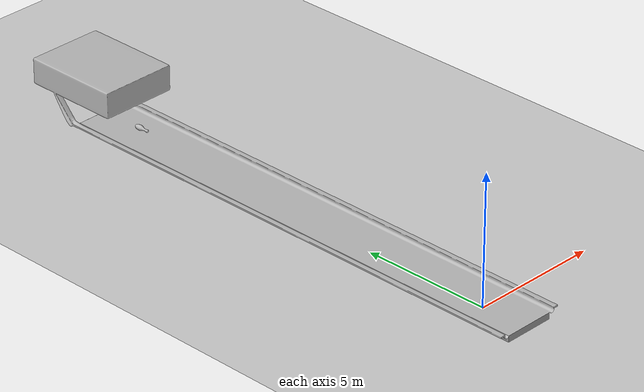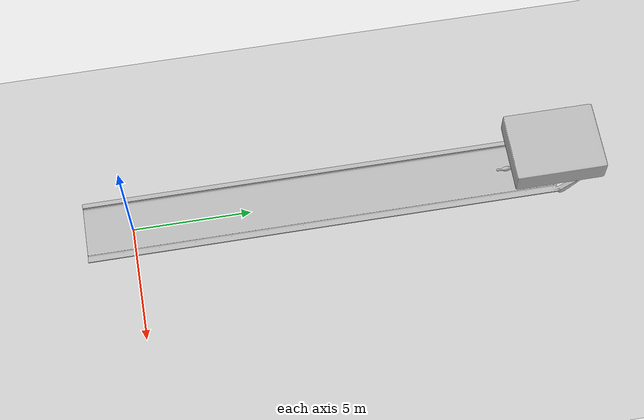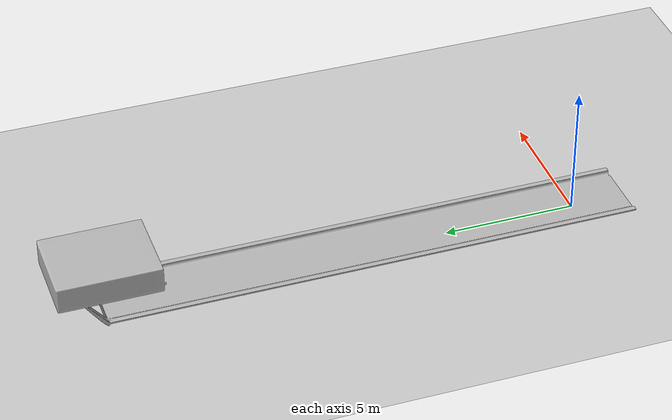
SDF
<sdf version="1.7">
 <world name="default">
  <model name="ground_plane">
   <static>1</static>
   <link name="link">
    <collision name="collision">
     <geometry><plane><normal>0 0 1</normal><size>50 100</size></plane></geometry>
     <surface>
      <contact><collide_bitmask>65535</collide_bitmask></contact>
      <friction><ode><mu>100</mu><mu2>50</mu2></ode></friction>
     </surface>
    </collision>
    <visual name="visual">
     <cast_shadows>0</cast_shadows>
     <geometry><plane><normal>0 0 1</normal><size>50 100</size></plane></geometry>
     <material>
      <script><uri>file://media/materials/scripts/gazebo.material</uri><name>Gazebo/Grey</name></script>
     </material>
    </visual>
   </link>
  </model>
  <gravity>0 0 -9.8</gravity>
  <magnetic_field>6e-06 2.3e-05 -4.2e-05</magnetic_field>
  <atmosphere type="adiabatic"/>
  <physics type="ode">
   <max_step_size>0.001</max_step_size>
   <real_time_factor>1</real_time_factor>
   <real_time_update_rate>1000</real_time_update_rate>
  </physics>
  <scene><ambient>0.4 0.4 0.4 1</ambient><background>0.7 0.7 0.7 1</background><shadows>1</shadows></scene>
  <spherical_coordinates>
   <surface_model>EARTH_WGS84</surface_model>
   <latitude_deg>0</latitude_deg>
   <longitude_deg>0</longitude_deg>
   <elevation>0</elevation>
   <heading_deg>0</heading_deg>
  </spherical_coordinates>
  <model name="platform">
   <link name="link_0">
    <inertial>
     <mass>2000</mass>
     <inertia><ixx>66677.1</ixx><ixy>0</ixy><ixz>0</ixz><iyy>677.083</iyy><iyz>0</iyz><izz>67333.3</izz></inertia>
    </inertial>
    <pose>0.0022 4.46599 -0.015017 0 -0 0</pose>
    <visual name="visual">
     <geometry><box><size>1.95 20 0.25</size></box></geometry>
     <material>
      <lighting>1</lighting>
      <script><uri>file://media/materials/scripts/gazebo.material</uri><name>Gazebo/Grey</name></script>
      <shader type="pixel"><normal_map>__default__</normal_map></shader>
      <ambient>0.3 0.3 0.3 1</ambient>
      <diffuse>0.7 0.7 0.7 1</diffuse>
      <specular>0.01 0.01 0.01 1</specular>
      <emissive>0 0 0 1</emissive>
     </material>
    </visual>
    <collision name="collision">
     <geometry><box><size>1.95 20 0.25</size></box></geometry>
     <surface>
      <friction>
       <ode><mu>100</mu><mu2>100</mu2><fdir1>0 0 0</fdir1><slip1>0</slip1><slip2>0</slip2></ode>
       <torsional>
        <coefficient>1</coefficient>
        <patch_radius>0</patch_radius>
        <surface_radius>0</surface_radius>
        <use_patch_radius>1</use_patch_radius>
        <ode><slip>0</slip></ode>
       </torsional>
      </friction>
      <bounce><restitution_coefficient>0</restitution_coefficient><threshold>1e+06</threshold></bounce>
      <contact>
       <collide_without_contact>0</collide_without_contact>
       <collide_without_contact_bitmask>1</collide_without_contact_bitmask>
       <collide_bitmask>1</collide_bitmask>
       <ode>
        <soft_cfm>0</soft_cfm>
        <soft_erp>0.2</soft_erp>
        <kp>1e+13</kp>
        <kd>1</kd>
        <max_vel>0.01</max_vel>
        <min_depth>0</min_depth>
       </ode>
       <bullet>
        <split_impulse>1</split_impulse>
        <split_impulse_penetration_threshold>-0.01</split_impulse_penetration_threshold>
        <soft_cfm>0</soft_cfm>
        <soft_erp>0.2</soft_erp>
        <kp>1e+13</kp>
        <kd>1</kd>
       </bullet>
      </contact>
     </surface>
    </collision>
   </link>
   <model name="bowling_alley">
    <link name="link_0">
     <inertial>
      <mass>1000</mass>
      <inertia><ixx>166.667</ixx><ixy>0</ixy><ixz>0</ixz><iyy>166.667</iyy><iyz>0</iyz><izz>166.667</izz></inertia>
      <pose>0 0 0.11 0 -0 0</pose>
     </inertial>
     <pose>0 0 0.11 1.5707 -0 0</pose>
     <visual name="visual">
      <pose>0 0 0.1 0 -0 0</pose>
      <geometry>
       <mesh><uri>model://bowling_alley/meshes/bowling-alley.obj</uri><scale>1 1 1</scale></mesh>
      </geometry>
     </visual>
     <collision name="collision">
      <pose>0 0 0.1 0 -0 0</pose>
      <geometry>
       <mesh><uri>model://bowling_alley/meshes/bowling-alley-collision.obj</uri><scale>1 1 1</scale></mesh>
      </geometry>
      <surface>
       <friction>
        <ode><mu>100</mu><mu2>100</mu2><fdir1>0 0 0</fdir1><slip1>0</slip1><slip2>0</slip2></ode>
        <torsional>
         <coefficient>1</coefficient>
         <patch_radius>0</patch_radius>
         <surface_radius>0</surface_radius>
         <use_patch_radius>1</use_patch_radius>
         <ode><slip>0</slip></ode>
        </torsional>
       </friction>
       <bounce><restitution_coefficient>0</restitution_coefficient><threshold>10</threshold></bounce>
       <contact>
        <collide_without_contact>0</collide_without_contact>
        <collide_without_contact_bitmask>1</collide_without_contact_bitmask>
        <collide_bitmask>1</collide_bitmask>
        <ode>
         <soft_cfm>0</soft_cfm>
         <soft_erp>0.2</soft_erp>
         <kp>1e+13</kp>
         <kd>1</kd>
         <max_vel>0.01</max_vel>
         <min_depth>0</min_depth>
        </ode>
        <bullet>
         <split_impulse>1</split_impulse>
         <split_impulse_penetration_threshold>-0.01</split_impulse_penetration_threshold>
         <soft_cfm>0</soft_cfm>
         <soft_erp>0.2</soft_erp>
         <kp>1e+13</kp>
         <kd>1</kd>
        </bullet>
       </contact>
      </surface>
     </collision>
    </link>
    <static>1</static>
    <pose>-0.0022 -4.46599 0.015018 0 -0 0</pose>
   </model>
   <static>0</static>
   <pose>0 3.56533 0.140017 0 -0 0</pose>
  </model>
  <model name="bowling_pin">
   <link name="link_0">
    <inertial>
     <mass>1.6</mass>
     <inertia>
      <ixx>0.000212</ixx>
      <ixy>0</ixy>
      <ixz>0</ixz>
      <iyy>3.4e-05</iyy>
      <iyz>0</iyz>
      <izz>0.000212</izz>
     </inertia>
    </inertial>
    <pose>0 0 0 1.5707 -0 0</pose>
    <visual name="visual">
     <geometry><mesh><uri>model://bowling_pin/meshes/bowling-pin.obj</uri><scale>1 1 1</scale></mesh></geometry>
    </visual>
    <collision name="collision">
     <geometry><mesh><uri>model://bowling_pin/meshes/bowling-pin.obj</uri><scale>1 1 1</scale></mesh></geometry>
     <surface>
      <friction>
       <ode><mu>1</mu><mu2>1</mu2><fdir1>0 0 0</fdir1><slip1>0</slip1><slip2>0</slip2></ode>
       <torsional>
        <coefficient>1</coefficient>
        <patch_radius>0</patch_radius>
        <surface_radius>0</surface_radius>
        <use_patch_radius>1</use_patch_radius>
        <ode><slip>0</slip></ode>
       </torsional>
      </friction>
      <bounce><restitution_coefficient>0</restitution_coefficient><threshold>1e+06</threshold></bounce>
      <contact>
       <collide_without_contact>0</collide_without_contact>
       <collide_without_contact_bitmask>1</collide_without_contact_bitmask>
       <collide_bitmask>1</collide_bitmask>
       <ode>
        <soft_cfm>0</soft_cfm>
        <soft_erp>0.2</soft_erp>
        <kp>1e+13</kp>
        <kd>1</kd>
        <max_vel>0.01</max_vel>
        <min_depth>0</min_depth>
       </ode>
       <bullet>
        <split_impulse>1</split_impulse>
        <split_impulse_penetration_threshold>-0.01</split_impulse_penetration_threshold>
        <soft_cfm>0</soft_cfm>
        <soft_erp>0.2</soft_erp>
        <kp>1e+13</kp>
        <kd>1</kd>
       </bullet>
      </contact>
     </surface>
    </collision>
   </link>
   <static>0</static>
   <pose>0 16 0.458056 1.57068 0 0</pose>
  </model>
  <light name="user_point_light_1" type="point">
   <pose>0 16.5 1.5 0 -0 0</pose>
   <diffuse>0.5 0.5 0.5 1</diffuse>
   <specular>0.1 0.1 0.1 1</specular>
   <attenuation>
    <range>50</range>
    <constant>0.7</constant>
    <linear>0.01</linear>
    <quadratic>0.001</quadratic>
   </attenuation>
   <direction>0 0 -1</direction>
  </light>
  <light name="user_spot_light_1" type="spot">
   <pose>0 13 2 0 -0 0</pose>
   <diffuse>0.5 0.5 0.5 1</diffuse>
   <specular>0.8 0.8 0 0.3</specular>
   <direction>0 1 0</direction>
   <attenuation>
    <range>100</range>
    <constant>1.30</constant>
    <linear>0.19</linear>
    <quadratic>0.001</quadratic>
   </attenuation>
   <cast_shadows>0</cast_shadows>
   <spot><inner_angle>0.6</inner_angle><outer_angle>1</outer_angle><falloff>1</falloff></spot>
  </light>
  <light name="user_spot_light_0" type="spot">
   <pose>0 -0.5 1.5 0 -0 0</pose>
   <diffuse>0.5 0.5 0.5 1</diffuse>
   <specular>0 0.5 0 0.5</specular>
   <attenuation>
    <range>20</range>
    <constant>0.5</constant>
    <linear>0.01</linear>
    <quadratic>0.001</quadratic>
   </attenuation>
   <direction>0 0 -1</direction>
   <spot><inner_angle>0.6</inner_angle><outer_angle>1.5</outer_angle><falloff>1</falloff></spot>
  </light>
 </world>
</sdf>
